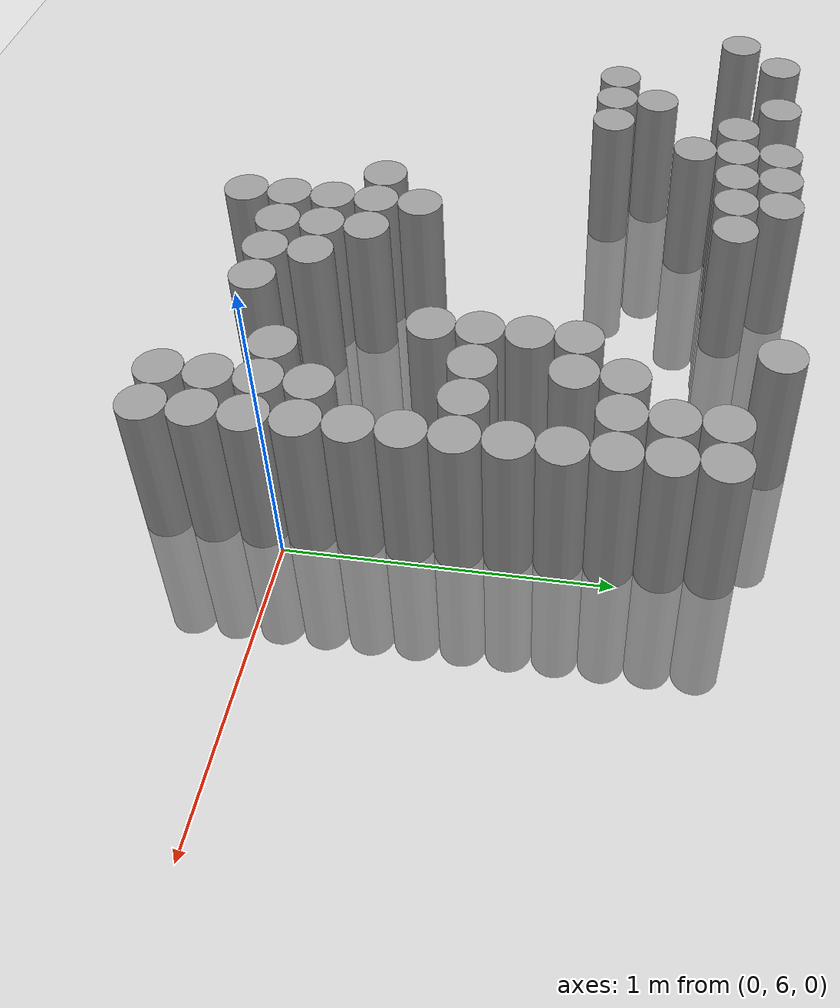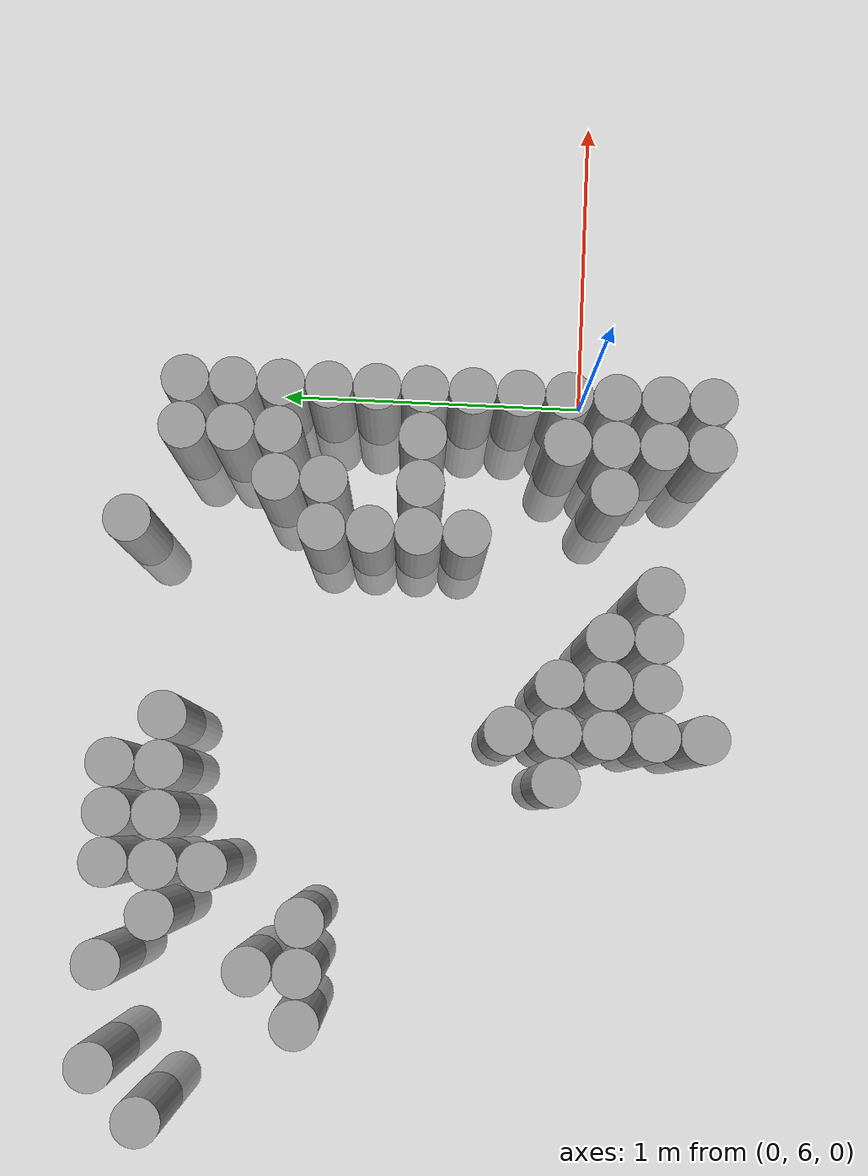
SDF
<sdf version="1.6">
 <world name="default">
  <model name="ground_plane">
   <static>1</static>
   <static>1</static>
   <link name="link">
    <collision name="collision">
     <geometry><plane><normal>0 0 1</normal><size>100 100</size></plane></geometry>
     <surface><friction><ode><mu>100</mu><mu2>50</mu2></ode></friction></surface>
    </collision>
    <visual name="visual">
     <cast_shadows>0</cast_shadows>
     <geometry><plane><normal>0 0 1</normal><size>100 100</size></plane></geometry>
     <material>
      <script><uri>file://media/materials/scripts/gazebo.material</uri><name>Gazebo/Grey</name></script>
     </material>
    </visual>
   </link>
  </model>
  <model name="unit_cylinder_163">
   <static>1</static>
   <pose>-2.325000 7.275000 0.000000 0.000000 0.000000 0.000000</pose>
   <link name="link">
    <inertial>
     <mass>1</mass>
     <inertia><ixx>0.145833</ixx><ixy>0</ixy><ixz>0</ixz><iyy>0.145833</iyy><iyz>0</iyz><izz>0.125</izz></inertia>
    </inertial>
    <collision name="collision">
     <geometry><cylinder><radius>0.075000</radius><length>1</length></cylinder></geometry>
    </collision>
    <visual name="visual">
     <geometry><cylinder><radius>0.075000</radius><length>1</length></cylinder></geometry>
     <material>
      <script><name>Gazebo/Grey</name><uri>file://media/materials/scripts/gazebo.material</uri></script>
     </material>
    </visual>
   </link>
  </model>
  <model name="unit_cylinder_169">
   <static>1</static>
   <pose>-2.175000 7.425000 0.000000 0.000000 0.000000 0.000000</pose>
   <link name="link">
    <inertial>
     <mass>1</mass>
     <inertia><ixx>0.145833</ixx><ixy>0</ixy><ixz>0</ixz><iyy>0.145833</iyy><iyz>0</iyz><izz>0.125</izz></inertia>
    </inertial>
    <collision name="collision">
     <geometry><cylinder><radius>0.075000</radius><length>1</length></cylinder></geometry>
    </collision>
    <visual name="visual">
     <geometry><cylinder><radius>0.075000</radius><length>1</length></cylinder></geometry>
     <material>
      <script><name>Gazebo/Grey</name><uri>file://media/materials/scripts/gazebo.material</uri></script>
     </material>
    </visual>
   </link>
  </model>
  <model name="unit_cylinder_174">
   <static>1</static>
   <pose>-2.025000 6.825000 0.000000 0.000000 0.000000 0.000000</pose>
   <link name="link">
    <inertial>
     <mass>1</mass>
     <inertia><ixx>0.145833</ixx><ixy>0</ixy><ixz>0</ixz><iyy>0.145833</iyy><iyz>0</iyz><izz>0.125</izz></inertia>
    </inertial>
    <collision name="collision">
     <geometry><cylinder><radius>0.075000</radius><length>1</length></cylinder></geometry>
    </collision>
    <visual name="visual">
     <geometry><cylinder><radius>0.075000</radius><length>1</length></cylinder></geometry>
     <material>
      <script><name>Gazebo/Grey</name><uri>file://media/materials/scripts/gazebo.material</uri></script>
     </material>
    </visual>
   </link>
  </model>
  <model name="unit_cylinder_179">
   <static>1</static>
   <pose>-1.875000 6.825000 0.000000 0.000000 0.000000 0.000000</pose>
   <link name="link">
    <inertial>
     <mass>1</mass>
     <inertia><ixx>0.145833</ixx><ixy>0</ixy><ixz>0</ixz><iyy>0.145833</iyy><iyz>0</iyz><izz>0.125</izz></inertia>
    </inertial>
    <collision name="collision">
     <geometry><cylinder><radius>0.075000</radius><length>1</length></cylinder></geometry>
    </collision>
    <visual name="visual">
     <geometry><cylinder><radius>0.075000</radius><length>1</length></cylinder></geometry>
     <material>
      <script><name>Gazebo/Grey</name><uri>file://media/materials/scripts/gazebo.material</uri></script>
     </material>
    </visual>
   </link>
  </model>
  <model name="unit_cylinder_180">
   <static>1</static>
   <pose>-1.875000 6.975000 0.000000 0.000000 0.000000 0.000000</pose>
   <link name="link">
    <inertial>
     <mass>1</mass>
     <inertia><ixx>0.145833</ixx><ixy>0</ixy><ixz>0</ixz><iyy>0.145833</iyy><iyz>0</iyz><izz>0.125</izz></inertia>
    </inertial>
    <collision name="collision">
     <geometry><cylinder><radius>0.075000</radius><length>1</length></cylinder></geometry>
    </collision>
    <visual name="visual">
     <geometry><cylinder><radius>0.075000</radius><length>1</length></cylinder></geometry>
     <material>
      <script><name>Gazebo/Grey</name><uri>file://media/materials/scripts/gazebo.material</uri></script>
     </material>
    </visual>
   </link>
  </model>
  <model name="unit_cylinder_181">
   <static>1</static>
   <pose>-1.875000 7.425000 0.000000 0.000000 0.000000 0.000000</pose>
   <link name="link">
    <inertial>
     <mass>1</mass>
     <inertia><ixx>0.145833</ixx><ixy>0</ixy><ixz>0</ixz><iyy>0.145833</iyy><iyz>0</iyz><izz>0.125</izz></inertia>
    </inertial>
    <collision name="collision">
     <geometry><cylinder><radius>0.075000</radius><length>1</length></cylinder></geometry>
    </collision>
    <visual name="visual">
     <geometry><cylinder><radius>0.075000</radius><length>1</length></cylinder></geometry>
     <material>
      <script><name>Gazebo/Grey</name><uri>file://media/materials/scripts/gazebo.material</uri></script>
     </material>
    </visual>
   </link>
  </model>
  <model name="unit_cylinder_184">
   <static>1</static>
   <pose>-1.725000 6.825000 0.000000 0.000000 0.000000 0.000000</pose>
   <link name="link">
    <inertial>
     <mass>1</mass>
     <inertia><ixx>0.145833</ixx><ixy>0</ixy><ixz>0</ixz><iyy>0.145833</iyy><iyz>0</iyz><izz>0.125</izz></inertia>
    </inertial>
    <collision name="collision">
     <geometry><cylinder><radius>0.075000</radius><length>1</length></cylinder></geometry>
    </collision>
    <visual name="visual">
     <geometry><cylinder><radius>0.075000</radius><length>1</length></cylinder></geometry>
     <material>
      <script><name>Gazebo/Grey</name><uri>file://media/materials/scripts/gazebo.material</uri></script>
     </material>
    </visual>
   </link>
  </model>
  <model name="unit_cylinder_185">
   <static>1</static>
   <pose>-1.725000 7.275000 0.000000 0.000000 0.000000 0.000000</pose>
   <link name="link">
    <inertial>
     <mass>1</mass>
     <inertia><ixx>0.145833</ixx><ixy>0</ixy><ixz>0</ixz><iyy>0.145833</iyy><iyz>0</iyz><izz>0.125</izz></inertia>
    </inertial>
    <collision name="collision">
     <geometry><cylinder><radius>0.075000</radius><length>1</length></cylinder></geometry>
    </collision>
    <visual name="visual">
     <geometry><cylinder><radius>0.075000</radius><length>1</length></cylinder></geometry>
     <material>
      <script><name>Gazebo/Grey</name><uri>file://media/materials/scripts/gazebo.material</uri></script>
     </material>
    </visual>
   </link>
  </model>
  <model name="unit_cylinder_189">
   <static>1</static>
   <pose>-1.575000 7.125000 0.000000 0.000000 0.000000 0.000000</pose>
   <link name="link">
    <inertial>
     <mass>1</mass>
     <inertia><ixx>0.145833</ixx><ixy>0</ixy><ixz>0</ixz><iyy>0.145833</iyy><iyz>0</iyz><izz>0.125</izz></inertia>
    </inertial>
    <collision name="collision">
     <geometry><cylinder><radius>0.075000</radius><length>1</length></cylinder></geometry>
    </collision>
    <visual name="visual">
     <geometry><cylinder><radius>0.075000</radius><length>1</length></cylinder></geometry>
     <material>
      <script><name>Gazebo/Grey</name><uri>file://media/materials/scripts/gazebo.material</uri></script>
     </material>
    </visual>
   </link>
  </model>
  <model name="unit_cylinder_190">
   <static>1</static>
   <pose>-1.575000 7.275000 0.000000 0.000000 0.000000 0.000000</pose>
   <link name="link">
    <inertial>
     <mass>1</mass>
     <inertia><ixx>0.145833</ixx><ixy>0</ixy><ixz>0</ixz><iyy>0.145833</iyy><iyz>0</iyz><izz>0.125</izz></inertia>
    </inertial>
    <collision name="collision">
     <geometry><cylinder><radius>0.075000</radius><length>1</length></cylinder></geometry>
    </collision>
    <visual name="visual">
     <geometry><cylinder><radius>0.075000</radius><length>1</length></cylinder></geometry>
     <material>
      <script><name>Gazebo/Grey</name><uri>file://media/materials/scripts/gazebo.material</uri></script>
     </material>
    </visual>
   </link>
  </model>
  <model name="unit_cylinder_191">
   <static>1</static>
   <pose>-1.575000 7.425000 0.000000 0.000000 0.000000 0.000000</pose>
   <link name="link">
    <inertial>
     <mass>1</mass>
     <inertia><ixx>0.145833</ixx><ixy>0</ixy><ixz>0</ixz><iyy>0.145833</iyy><iyz>0</iyz><izz>0.125</izz></inertia>
    </inertial>
    <collision name="collision">
     <geometry><cylinder><radius>0.075000</radius><length>1</length></cylinder></geometry>
    </collision>
    <visual name="visual">
     <geometry><cylinder><radius>0.075000</radius><length>1</length></cylinder></geometry>
     <material>
      <script><name>Gazebo/Grey</name><uri>file://media/materials/scripts/gazebo.material</uri></script>
     </material>
    </visual>
   </link>
  </model>
  <model name="unit_cylinder_198">
   <static>1</static>
   <pose>-1.425000 7.275000 0.000000 0.000000 0.000000 0.000000</pose>
   <link name="link">
    <inertial>
     <mass>1</mass>
     <inertia><ixx>0.145833</ixx><ixy>0</ixy><ixz>0</ixz><iyy>0.145833</iyy><iyz>0</iyz><izz>0.125</izz></inertia>
    </inertial>
    <collision name="collision">
     <geometry><cylinder><radius>0.075000</radius><length>1</length></cylinder></geometry>
    </collision>
    <visual name="visual">
     <geometry><cylinder><radius>0.075000</radius><length>1</length></cylinder></geometry>
     <material>
      <script><name>Gazebo/Grey</name><uri>file://media/materials/scripts/gazebo.material</uri></script>
     </material>
    </visual>
   </link>
  </model>
  <model name="unit_cylinder_199">
   <static>1</static>
   <pose>-1.425000 7.425000 0.000000 0.000000 0.000000 0.000000</pose>
   <link name="link">
    <inertial>
     <mass>1</mass>
     <inertia><ixx>0.145833</ixx><ixy>0</ixy><ixz>0</ixz><iyy>0.145833</iyy><iyz>0</iyz><izz>0.125</izz></inertia>
    </inertial>
    <collision name="collision">
     <geometry><cylinder><radius>0.075000</radius><length>1</length></cylinder></geometry>
    </collision>
    <visual name="visual">
     <geometry><cylinder><radius>0.075000</radius><length>1</length></cylinder></geometry>
     <material>
      <script><name>Gazebo/Grey</name><uri>file://media/materials/scripts/gazebo.material</uri></script>
     </material>
    </visual>
   </link>
  </model>
  <model name="unit_cylinder_204">
   <static>1</static>
   <pose>-1.275000 6.075000 0.000000 0.000000 0.000000 0.000000</pose>
   <link name="link">
    <inertial>
     <mass>1</mass>
     <inertia><ixx>0.145833</ixx><ixy>0</ixy><ixz>0</ixz><iyy>0.145833</iyy><iyz>0</iyz><izz>0.125</izz></inertia>
    </inertial>
    <collision name="collision">
     <geometry><cylinder><radius>0.075000</radius><length>1</length></cylinder></geometry>
    </collision>
    <visual name="visual">
     <geometry><cylinder><radius>0.075000</radius><length>1</length></cylinder></geometry>
     <material>
      <script><name>Gazebo/Grey</name><uri>file://media/materials/scripts/gazebo.material</uri></script>
     </material>
    </visual>
   </link>
  </model>
  <model name="unit_cylinder_205">
   <static>1</static>
   <pose>-1.275000 7.275000 0.000000 0.000000 0.000000 0.000000</pose>
   <link name="link">
    <inertial>
     <mass>1</mass>
     <inertia><ixx>0.145833</ixx><ixy>0</ixy><ixz>0</ixz><iyy>0.145833</iyy><iyz>0</iyz><izz>0.125</izz></inertia>
    </inertial>
    <collision name="collision">
     <geometry><cylinder><radius>0.075000</radius><length>1</length></cylinder></geometry>
    </collision>
    <visual name="visual">
     <geometry><cylinder><radius>0.075000</radius><length>1</length></cylinder></geometry>
     <material>
      <script><name>Gazebo/Grey</name><uri>file://media/materials/scripts/gazebo.material</uri></script>
     </material>
    </visual>
   </link>
  </model>
  <model name="unit_cylinder_206">
   <static>1</static>
   <pose>-1.275000 7.425000 0.000000 0.000000 0.000000 0.000000</pose>
   <link name="link">
    <inertial>
     <mass>1</mass>
     <inertia><ixx>0.145833</ixx><ixy>0</ixy><ixz>0</ixz><iyy>0.145833</iyy><iyz>0</iyz><izz>0.125</izz></inertia>
    </inertial>
    <collision name="collision">
     <geometry><cylinder><radius>0.075000</radius><length>1</length></cylinder></geometry>
    </collision>
    <visual name="visual">
     <geometry><cylinder><radius>0.075000</radius><length>1</length></cylinder></geometry>
     <material>
      <script><name>Gazebo/Grey</name><uri>file://media/materials/scripts/gazebo.material</uri></script>
     </material>
    </visual>
   </link>
  </model>
  <model name="unit_cylinder_208">
   <static>1</static>
   <pose>-1.125000 5.625000 0.000000 0.000000 0.000000 0.000000</pose>
   <link name="link">
    <inertial>
     <mass>1</mass>
     <inertia><ixx>0.145833</ixx><ixy>0</ixy><ixz>0</ixz><iyy>0.145833</iyy><iyz>0</iyz><izz>0.125</izz></inertia>
    </inertial>
    <collision name="collision">
     <geometry><cylinder><radius>0.075000</radius><length>1</length></cylinder></geometry>
    </collision>
    <visual name="visual">
     <geometry><cylinder><radius>0.075000</radius><length>1</length></cylinder></geometry>
     <material>
      <script><name>Gazebo/Grey</name><uri>file://media/materials/scripts/gazebo.material</uri></script>
     </material>
    </visual>
   </link>
  </model>
  <model name="unit_cylinder_209">
   <static>1</static>
   <pose>-1.125000 5.775000 0.000000 0.000000 0.000000 0.000000</pose>
   <link name="link">
    <inertial>
     <mass>1</mass>
     <inertia><ixx>0.145833</ixx><ixy>0</ixy><ixz>0</ixz><iyy>0.145833</iyy><iyz>0</iyz><izz>0.125</izz></inertia>
    </inertial>
    <collision name="collision">
     <geometry><cylinder><radius>0.075000</radius><length>1</length></cylinder></geometry>
    </collision>
    <visual name="visual">
     <geometry><cylinder><radius>0.075000</radius><length>1</length></cylinder></geometry>
     <material>
      <script><name>Gazebo/Grey</name><uri>file://media/materials/scripts/gazebo.material</uri></script>
     </material>
    </visual>
   </link>
  </model>
  <model name="unit_cylinder_210">
   <static>1</static>
   <pose>-1.125000 5.925000 0.000000 0.000000 0.000000 0.000000</pose>
   <link name="link">
    <inertial>
     <mass>1</mass>
     <inertia><ixx>0.145833</ixx><ixy>0</ixy><ixz>0</ixz><iyy>0.145833</iyy><iyz>0</iyz><izz>0.125</izz></inertia>
    </inertial>
    <collision name="collision">
     <geometry><cylinder><radius>0.075000</radius><length>1</length></cylinder></geometry>
    </collision>
    <visual name="visual">
     <geometry><cylinder><radius>0.075000</radius><length>1</length></cylinder></geometry>
     <material>
      <script><name>Gazebo/Grey</name><uri>file://media/materials/scripts/gazebo.material</uri></script>
     </material>
    </visual>
   </link>
  </model>
  <model name="unit_cylinder_211">
   <static>1</static>
   <pose>-1.125000 6.075000 0.000000 0.000000 0.000000 0.000000</pose>
   <link name="link">
    <inertial>
     <mass>1</mass>
     <inertia><ixx>0.145833</ixx><ixy>0</ixy><ixz>0</ixz><iyy>0.145833</iyy><iyz>0</iyz><izz>0.125</izz></inertia>
    </inertial>
    <collision name="collision">
     <geometry><cylinder><radius>0.075000</radius><length>1</length></cylinder></geometry>
    </collision>
    <visual name="visual">
     <geometry><cylinder><radius>0.075000</radius><length>1</length></cylinder></geometry>
     <material>
      <script><name>Gazebo/Grey</name><uri>file://media/materials/scripts/gazebo.material</uri></script>
     </material>
    </visual>
   </link>
  </model>
  <model name="unit_cylinder_212">
   <static>1</static>
   <pose>-1.125000 6.225000 0.000000 0.000000 0.000000 0.000000</pose>
   <link name="link">
    <inertial>
     <mass>1</mass>
     <inertia><ixx>0.145833</ixx><ixy>0</ixy><ixz>0</ixz><iyy>0.145833</iyy><iyz>0</iyz><izz>0.125</izz></inertia>
    </inertial>
    <collision name="collision">
     <geometry><cylinder><radius>0.075000</radius><length>1</length></cylinder></geometry>
    </collision>
    <visual name="visual">
     <geometry><cylinder><radius>0.075000</radius><length>1</length></cylinder></geometry>
     <material>
      <script><name>Gazebo/Grey</name><uri>file://media/materials/scripts/gazebo.material</uri></script>
     </material>
    </visual>
   </link>
  </model>
  <model name="unit_cylinder_213">
   <static>1</static>
   <pose>-1.125000 7.275000 0.000000 0.000000 0.000000 0.000000</pose>
   <link name="link">
    <inertial>
     <mass>1</mass>
     <inertia><ixx>0.145833</ixx><ixy>0</ixy><ixz>0</ixz><iyy>0.145833</iyy><iyz>0</iyz><izz>0.125</izz></inertia>
    </inertial>
    <collision name="collision">
     <geometry><cylinder><radius>0.075000</radius><length>1</length></cylinder></geometry>
    </collision>
    <visual name="visual">
     <geometry><cylinder><radius>0.075000</radius><length>1</length></cylinder></geometry>
     <material>
      <script><name>Gazebo/Grey</name><uri>file://media/materials/scripts/gazebo.material</uri></script>
     </material>
    </visual>
   </link>
  </model>
  <model name="unit_cylinder_215">
   <static>1</static>
   <pose>-0.975000 5.775000 0.000000 0.000000 0.000000 0.000000</pose>
   <link name="link">
    <inertial>
     <mass>1</mass>
     <inertia><ixx>0.145833</ixx><ixy>0</ixy><ixz>0</ixz><iyy>0.145833</iyy><iyz>0</iyz><izz>0.125</izz></inertia>
    </inertial>
    <collision name="collision">
     <geometry><cylinder><radius>0.075000</radius><length>1</length></cylinder></geometry>
    </collision>
    <visual name="visual">
     <geometry><cylinder><radius>0.075000</radius><length>1</length></cylinder></geometry>
     <material>
      <script><name>Gazebo/Grey</name><uri>file://media/materials/scripts/gazebo.material</uri></script>
     </material>
    </visual>
   </link>
  </model>
  <model name="unit_cylinder_216">
   <static>1</static>
   <pose>-0.975000 5.925000 0.000000 0.000000 0.000000 0.000000</pose>
   <link name="link">
    <inertial>
     <mass>1</mass>
     <inertia><ixx>0.145833</ixx><ixy>0</ixy><ixz>0</ixz><iyy>0.145833</iyy><iyz>0</iyz><izz>0.125</izz></inertia>
    </inertial>
    <collision name="collision">
     <geometry><cylinder><radius>0.075000</radius><length>1</length></cylinder></geometry>
    </collision>
    <visual name="visual">
     <geometry><cylinder><radius>0.075000</radius><length>1</length></cylinder></geometry>
     <material>
      <script><name>Gazebo/Grey</name><uri>file://media/materials/scripts/gazebo.material</uri></script>
     </material>
    </visual>
   </link>
  </model>
  <model name="unit_cylinder_217">
   <static>1</static>
   <pose>-0.975000 6.075000 0.000000 0.000000 0.000000 0.000000</pose>
   <link name="link">
    <inertial>
     <mass>1</mass>
     <inertia><ixx>0.145833</ixx><ixy>0</ixy><ixz>0</ixz><iyy>0.145833</iyy><iyz>0</iyz><izz>0.125</izz></inertia>
    </inertial>
    <collision name="collision">
     <geometry><cylinder><radius>0.075000</radius><length>1</length></cylinder></geometry>
    </collision>
    <visual name="visual">
     <geometry><cylinder><radius>0.075000</radius><length>1</length></cylinder></geometry>
     <material>
      <script><name>Gazebo/Grey</name><uri>file://media/materials/scripts/gazebo.material</uri></script>
     </material>
    </visual>
   </link>
  </model>
  <model name="unit_cylinder_219">
   <static>1</static>
   <pose>-0.825000 5.775000 0.000000 0.000000 0.000000 0.000000</pose>
   <link name="link">
    <inertial>
     <mass>1</mass>
     <inertia><ixx>0.145833</ixx><ixy>0</ixy><ixz>0</ixz><iyy>0.145833</iyy><iyz>0</iyz><izz>0.125</izz></inertia>
    </inertial>
    <collision name="collision">
     <geometry><cylinder><radius>0.075000</radius><length>1</length></cylinder></geometry>
    </collision>
    <visual name="visual">
     <geometry><cylinder><radius>0.075000</radius><length>1</length></cylinder></geometry>
     <material>
      <script><name>Gazebo/Grey</name><uri>file://media/materials/scripts/gazebo.material</uri></script>
     </material>
    </visual>
   </link>
  </model>
  <model name="unit_cylinder_220">
   <static>1</static>
   <pose>-0.825000 5.925000 0.000000 0.000000 0.000000 0.000000</pose>
   <link name="link">
    <inertial>
     <mass>1</mass>
     <inertia><ixx>0.145833</ixx><ixy>0</ixy><ixz>0</ixz><iyy>0.145833</iyy><iyz>0</iyz><izz>0.125</izz></inertia>
    </inertial>
    <collision name="collision">
     <geometry><cylinder><radius>0.075000</radius><length>1</length></cylinder></geometry>
    </collision>
    <visual name="visual">
     <geometry><cylinder><radius>0.075000</radius><length>1</length></cylinder></geometry>
     <material>
      <script><name>Gazebo/Grey</name><uri>file://media/materials/scripts/gazebo.material</uri></script>
     </material>
    </visual>
   </link>
  </model>
  <model name="unit_cylinder_221">
   <static>1</static>
   <pose>-0.675000 5.775000 0.000000 0.000000 0.000000 0.000000</pose>
   <link name="link">
    <inertial>
     <mass>1</mass>
     <inertia><ixx>0.145833</ixx><ixy>0</ixy><ixz>0</ixz><iyy>0.145833</iyy><iyz>0</iyz><izz>0.125</izz></inertia>
    </inertial>
    <collision name="collision">
     <geometry><cylinder><radius>0.075000</radius><length>1</length></cylinder></geometry>
    </collision>
    <visual name="visual">
     <geometry><cylinder><radius>0.075000</radius><length>1</length></cylinder></geometry>
     <material>
      <script><name>Gazebo/Grey</name><uri>file://media/materials/scripts/gazebo.material</uri></script>
     </material>
    </visual>
   </link>
  </model>
  <model name="unit_cylinder_222">
   <static>1</static>
   <pose>-0.525000 6.375000 0.000000 0.000000 0.000000 0.000000</pose>
   <link name="link">
    <inertial>
     <mass>1</mass>
     <inertia><ixx>0.145833</ixx><ixy>0</ixy><ixz>0</ixz><iyy>0.145833</iyy><iyz>0</iyz><izz>0.125</izz></inertia>
    </inertial>
    <collision name="collision">
     <geometry><cylinder><radius>0.075000</radius><length>1</length></cylinder></geometry>
    </collision>
    <visual name="visual">
     <geometry><cylinder><radius>0.075000</radius><length>1</length></cylinder></geometry>
     <material>
      <script><name>Gazebo/Grey</name><uri>file://media/materials/scripts/gazebo.material</uri></script>
     </material>
    </visual>
   </link>
  </model>
  <model name="unit_cylinder_223">
   <static>1</static>
   <pose>-0.525000 6.525000 0.000000 0.000000 0.000000 0.000000</pose>
   <link name="link">
    <inertial>
     <mass>1</mass>
     <inertia><ixx>0.145833</ixx><ixy>0</ixy><ixz>0</ixz><iyy>0.145833</iyy><iyz>0</iyz><izz>0.125</izz></inertia>
    </inertial>
    <collision name="collision">
     <geometry><cylinder><radius>0.075000</radius><length>1</length></cylinder></geometry>
    </collision>
    <visual name="visual">
     <geometry><cylinder><radius>0.075000</radius><length>1</length></cylinder></geometry>
     <material>
      <script><name>Gazebo/Grey</name><uri>file://media/materials/scripts/gazebo.material</uri></script>
     </material>
    </visual>
   </link>
  </model>
  <model name="unit_cylinder_224">
   <static>1</static>
   <pose>-0.525000 6.675000 0.000000 0.000000 0.000000 0.000000</pose>
   <link name="link">
    <inertial>
     <mass>1</mass>
     <inertia><ixx>0.145833</ixx><ixy>0</ixy><ixz>0</ixz><iyy>0.145833</iyy><iyz>0</iyz><izz>0.125</izz></inertia>
    </inertial>
    <collision name="collision">
     <geometry><cylinder><radius>0.075000</radius><length>1</length></cylinder></geometry>
    </collision>
    <visual name="visual">
     <geometry><cylinder><radius>0.075000</radius><length>1</length></cylinder></geometry>
     <material>
      <script><name>Gazebo/Grey</name><uri>file://media/materials/scripts/gazebo.material</uri></script>
     </material>
    </visual>
   </link>
  </model>
  <model name="unit_cylinder_225">
   <static>1</static>
   <pose>-0.525000 6.825000 0.000000 0.000000 0.000000 0.000000</pose>
   <link name="link">
    <inertial>
     <mass>1</mass>
     <inertia><ixx>0.145833</ixx><ixy>0</ixy><ixz>0</ixz><iyy>0.145833</iyy><iyz>0</iyz><izz>0.125</izz></inertia>
    </inertial>
    <collision name="collision">
     <geometry><cylinder><radius>0.075000</radius><length>1</length></cylinder></geometry>
    </collision>
    <visual name="visual">
     <geometry><cylinder><radius>0.075000</radius><length>1</length></cylinder></geometry>
     <material>
      <script><name>Gazebo/Grey</name><uri>file://media/materials/scripts/gazebo.material</uri></script>
     </material>
    </visual>
   </link>
  </model>
  <model name="unit_cylinder_226">
   <static>1</static>
   <pose>-0.525000 7.425000 0.000000 0.000000 0.000000 0.000000</pose>
   <link name="link">
    <inertial>
     <mass>1</mass>
     <inertia><ixx>0.145833</ixx><ixy>0</ixy><ixz>0</ixz><iyy>0.145833</iyy><iyz>0</iyz><izz>0.125</izz></inertia>
    </inertial>
    <collision name="collision">
     <geometry><cylinder><radius>0.075000</radius><length>1</length></cylinder></geometry>
    </collision>
    <visual name="visual">
     <geometry><cylinder><radius>0.075000</radius><length>1</length></cylinder></geometry>
     <material>
      <script><name>Gazebo/Grey</name><uri>file://media/materials/scripts/gazebo.material</uri></script>
     </material>
    </visual>
   </link>
  </model>
  <model name="unit_cylinder_228">
   <static>1</static>
   <pose>-0.375000 5.925000 0.000000 0.000000 0.000000 0.000000</pose>
   <link name="link">
    <inertial>
     <mass>1</mass>
     <inertia><ixx>0.145833</ixx><ixy>0</ixy><ixz>0</ixz><iyy>0.145833</iyy><iyz>0</iyz><izz>0.125</izz></inertia>
    </inertial>
    <collision name="collision">
     <geometry><cylinder><radius>0.075000</radius><length>1</length></cylinder></geometry>
    </collision>
    <visual name="visual">
     <geometry><cylinder><radius>0.075000</radius><length>1</length></cylinder></geometry>
     <material>
      <script><name>Gazebo/Grey</name><uri>file://media/materials/scripts/gazebo.material</uri></script>
     </material>
    </visual>
   </link>
  </model>
  <model name="unit_cylinder_229">
   <static>1</static>
   <pose>-0.375000 6.525000 0.000000 0.000000 0.000000 0.000000</pose>
   <link name="link">
    <inertial>
     <mass>1</mass>
     <inertia><ixx>0.145833</ixx><ixy>0</ixy><ixz>0</ixz><iyy>0.145833</iyy><iyz>0</iyz><izz>0.125</izz></inertia>
    </inertial>
    <collision name="collision">
     <geometry><cylinder><radius>0.075000</radius><length>1</length></cylinder></geometry>
    </collision>
    <visual name="visual">
     <geometry><cylinder><radius>0.075000</radius><length>1</length></cylinder></geometry>
     <material>
      <script><name>Gazebo/Grey</name><uri>file://media/materials/scripts/gazebo.material</uri></script>
     </material>
    </visual>
   </link>
  </model>
  <model name="unit_cylinder_230">
   <static>1</static>
   <pose>-0.375000 6.825000 0.000000 0.000000 0.000000 0.000000</pose>
   <link name="link">
    <inertial>
     <mass>1</mass>
     <inertia><ixx>0.145833</ixx><ixy>0</ixy><ixz>0</ixz><iyy>0.145833</iyy><iyz>0</iyz><izz>0.125</izz></inertia>
    </inertial>
    <collision name="collision">
     <geometry><cylinder><radius>0.075000</radius><length>1</length></cylinder></geometry>
    </collision>
    <visual name="visual">
     <geometry><cylinder><radius>0.075000</radius><length>1</length></cylinder></geometry>
     <material>
      <script><name>Gazebo/Grey</name><uri>file://media/materials/scripts/gazebo.material</uri></script>
     </material>
    </visual>
   </link>
  </model>
  <model name="unit_cylinder_231">
   <static>1</static>
   <pose>-0.375000 6.975000 0.000000 0.000000 0.000000 0.000000</pose>
   <link name="link">
    <inertial>
     <mass>1</mass>
     <inertia><ixx>0.145833</ixx><ixy>0</ixy><ixz>0</ixz><iyy>0.145833</iyy><iyz>0</iyz><izz>0.125</izz></inertia>
    </inertial>
    <collision name="collision">
     <geometry><cylinder><radius>0.075000</radius><length>1</length></cylinder></geometry>
    </collision>
    <visual name="visual">
     <geometry><cylinder><radius>0.075000</radius><length>1</length></cylinder></geometry>
     <material>
      <script><name>Gazebo/Grey</name><uri>file://media/materials/scripts/gazebo.material</uri></script>
     </material>
    </visual>
   </link>
  </model>
  <model name="unit_cylinder_238">
   <static>1</static>
   <pose>-0.225000 5.625000 0.000000 0.000000 0.000000 0.000000</pose>
   <link name="link">
    <inertial>
     <mass>1</mass>
     <inertia><ixx>0.145833</ixx><ixy>0</ixy><ixz>0</ixz><iyy>0.145833</iyy><iyz>0</iyz><izz>0.125</izz></inertia>
    </inertial>
    <collision name="collision">
     <geometry><cylinder><radius>0.075000</radius><length>1</length></cylinder></geometry>
    </collision>
    <visual name="visual">
     <geometry><cylinder><radius>0.075000</radius><length>1</length></cylinder></geometry>
     <material>
      <script><name>Gazebo/Grey</name><uri>file://media/materials/scripts/gazebo.material</uri></script>
     </material>
    </visual>
   </link>
  </model>
  <model name="unit_cylinder_239">
   <static>1</static>
   <pose>-0.225000 5.775000 0.000000 0.000000 0.000000 0.000000</pose>
   <link name="link">
    <inertial>
     <mass>1</mass>
     <inertia><ixx>0.145833</ixx><ixy>0</ixy><ixz>0</ixz><iyy>0.145833</iyy><iyz>0</iyz><izz>0.125</izz></inertia>
    </inertial>
    <collision name="collision">
     <geometry><cylinder><radius>0.075000</radius><length>1</length></cylinder></geometry>
    </collision>
    <visual name="visual">
     <geometry><cylinder><radius>0.075000</radius><length>1</length></cylinder></geometry>
     <material>
      <script><name>Gazebo/Grey</name><uri>file://media/materials/scripts/gazebo.material</uri></script>
     </material>
    </visual>
   </link>
  </model>
  <model name="unit_cylinder_240">
   <static>1</static>
   <pose>-0.225000 5.925000 0.000000 0.000000 0.000000 0.000000</pose>
   <link name="link">
    <inertial>
     <mass>1</mass>
     <inertia><ixx>0.145833</ixx><ixy>0</ixy><ixz>0</ixz><iyy>0.145833</iyy><iyz>0</iyz><izz>0.125</izz></inertia>
    </inertial>
    <collision name="collision">
     <geometry><cylinder><radius>0.075000</radius><length>1</length></cylinder></geometry>
    </collision>
    <visual name="visual">
     <geometry><cylinder><radius>0.075000</radius><length>1</length></cylinder></geometry>
     <material>
      <script><name>Gazebo/Grey</name><uri>file://media/materials/scripts/gazebo.material</uri></script>
     </material>
    </visual>
   </link>
  </model>
  <model name="unit_cylinder_241">
   <static>1</static>
   <pose>-0.225000 6.075000 0.000000 0.000000 0.000000 0.000000</pose>
   <link name="link">
    <inertial>
     <mass>1</mass>
     <inertia><ixx>0.145833</ixx><ixy>0</ixy><ixz>0</ixz><iyy>0.145833</iyy><iyz>0</iyz><izz>0.125</izz></inertia>
    </inertial>
    <collision name="collision">
     <geometry><cylinder><radius>0.075000</radius><length>1</length></cylinder></geometry>
    </collision>
    <visual name="visual">
     <geometry><cylinder><radius>0.075000</radius><length>1</length></cylinder></geometry>
     <material>
      <script><name>Gazebo/Grey</name><uri>file://media/materials/scripts/gazebo.material</uri></script>
     </material>
    </visual>
   </link>
  </model>
  <model name="unit_cylinder_242">
   <static>1</static>
   <pose>-0.225000 6.525000 0.000000 0.000000 0.000000 0.000000</pose>
   <link name="link">
    <inertial>
     <mass>1</mass>
     <inertia><ixx>0.145833</ixx><ixy>0</ixy><ixz>0</ixz><iyy>0.145833</iyy><iyz>0</iyz><izz>0.125</izz></inertia>
    </inertial>
    <collision name="collision">
     <geometry><cylinder><radius>0.075000</radius><length>1</length></cylinder></geometry>
    </collision>
    <visual name="visual">
     <geometry><cylinder><radius>0.075000</radius><length>1</length></cylinder></geometry>
     <material>
      <script><name>Gazebo/Grey</name><uri>file://media/materials/scripts/gazebo.material</uri></script>
     </material>
    </visual>
   </link>
  </model>
  <model name="unit_cylinder_243">
   <static>1</static>
   <pose>-0.225000 6.975000 0.000000 0.000000 0.000000 0.000000</pose>
   <link name="link">
    <inertial>
     <mass>1</mass>
     <inertia><ixx>0.145833</ixx><ixy>0</ixy><ixz>0</ixz><iyy>0.145833</iyy><iyz>0</iyz><izz>0.125</izz></inertia>
    </inertial>
    <collision name="collision">
     <geometry><cylinder><radius>0.075000</radius><length>1</length></cylinder></geometry>
    </collision>
    <visual name="visual">
     <geometry><cylinder><radius>0.075000</radius><length>1</length></cylinder></geometry>
     <material>
      <script><name>Gazebo/Grey</name><uri>file://media/materials/scripts/gazebo.material</uri></script>
     </material>
    </visual>
   </link>
  </model>
  <model name="unit_cylinder_244">
   <static>1</static>
   <pose>-0.225000 7.125000 0.000000 0.000000 0.000000 0.000000</pose>
   <link name="link">
    <inertial>
     <mass>1</mass>
     <inertia><ixx>0.145833</ixx><ixy>0</ixy><ixz>0</ixz><iyy>0.145833</iyy><iyz>0</iyz><izz>0.125</izz></inertia>
    </inertial>
    <collision name="collision">
     <geometry><cylinder><radius>0.075000</radius><length>1</length></cylinder></geometry>
    </collision>
    <visual name="visual">
     <geometry><cylinder><radius>0.075000</radius><length>1</length></cylinder></geometry>
     <material>
      <script><name>Gazebo/Grey</name><uri>file://media/materials/scripts/gazebo.material</uri></script>
     </material>
    </visual>
   </link>
  </model>
  <model name="unit_cylinder_245">
   <static>1</static>
   <pose>-0.225000 7.275000 0.000000 0.000000 0.000000 0.000000</pose>
   <link name="link">
    <inertial>
     <mass>1</mass>
     <inertia><ixx>0.145833</ixx><ixy>0</ixy><ixz>0</ixz><iyy>0.145833</iyy><iyz>0</iyz><izz>0.125</izz></inertia>
    </inertial>
    <collision name="collision">
     <geometry><cylinder><radius>0.075000</radius><length>1</length></cylinder></geometry>
    </collision>
    <visual name="visual">
     <geometry><cylinder><radius>0.075000</radius><length>1</length></cylinder></geometry>
     <material>
      <script><name>Gazebo/Grey</name><uri>file://media/materials/scripts/gazebo.material</uri></script>
     </material>
    </visual>
   </link>
  </model>
  <model name="unit_cylinder_259">
   <static>1</static>
   <pose>-0.075000 5.625000 0.000000 0.000000 0.000000 0.000000</pose>
   <link name="link">
    <inertial>
     <mass>1</mass>
     <inertia><ixx>0.145833</ixx><ixy>0</ixy><ixz>0</ixz><iyy>0.145833</iyy><iyz>0</iyz><izz>0.125</izz></inertia>
    </inertial>
    <collision name="collision">
     <geometry><cylinder><radius>0.075000</radius><length>1</length></cylinder></geometry>
    </collision>
    <visual name="visual">
     <geometry><cylinder><radius>0.075000</radius><length>1</length></cylinder></geometry>
     <material>
      <script><name>Gazebo/Grey</name><uri>file://media/materials/scripts/gazebo.material</uri></script>
     </material>
    </visual>
   </link>
  </model>
  <model name="unit_cylinder_260">
   <static>1</static>
   <pose>-0.075000 5.775000 0.000000 0.000000 0.000000 0.000000</pose>
   <link name="link">
    <inertial>
     <mass>1</mass>
     <inertia><ixx>0.145833</ixx><ixy>0</ixy><ixz>0</ixz><iyy>0.145833</iyy><iyz>0</iyz><izz>0.125</izz></inertia>
    </inertial>
    <collision name="collision">
     <geometry><cylinder><radius>0.075000</radius><length>1</length></cylinder></geometry>
    </collision>
    <visual name="visual">
     <geometry><cylinder><radius>0.075000</radius><length>1</length></cylinder></geometry>
     <material>
      <script><name>Gazebo/Grey</name><uri>file://media/materials/scripts/gazebo.material</uri></script>
     </material>
    </visual>
   </link>
  </model>
  <model name="unit_cylinder_261">
   <static>1</static>
   <pose>-0.075000 5.925000 0.000000 0.000000 0.000000 0.000000</pose>
   <link name="link">
    <inertial>
     <mass>1</mass>
     <inertia><ixx>0.145833</ixx><ixy>0</ixy><ixz>0</ixz><iyy>0.145833</iyy><iyz>0</iyz><izz>0.125</izz></inertia>
    </inertial>
    <collision name="collision">
     <geometry><cylinder><radius>0.075000</radius><length>1</length></cylinder></geometry>
    </collision>
    <visual name="visual">
     <geometry><cylinder><radius>0.075000</radius><length>1</length></cylinder></geometry>
     <material>
      <script><name>Gazebo/Grey</name><uri>file://media/materials/scripts/gazebo.material</uri></script>
     </material>
    </visual>
   </link>
  </model>
  <model name="unit_cylinder_262">
   <static>1</static>
   <pose>-0.075000 6.075000 0.000000 0.000000 0.000000 0.000000</pose>
   <link name="link">
    <inertial>
     <mass>1</mass>
     <inertia><ixx>0.145833</ixx><ixy>0</ixy><ixz>0</ixz><iyy>0.145833</iyy><iyz>0</iyz><izz>0.125</izz></inertia>
    </inertial>
    <collision name="collision">
     <geometry><cylinder><radius>0.075000</radius><length>1</length></cylinder></geometry>
    </collision>
    <visual name="visual">
     <geometry><cylinder><radius>0.075000</radius><length>1</length></cylinder></geometry>
     <material>
      <script><name>Gazebo/Grey</name><uri>file://media/materials/scripts/gazebo.material</uri></script>
     </material>
    </visual>
   </link>
  </model>
  <model name="unit_cylinder_263">
   <static>1</static>
   <pose>-0.075000 6.225000 0.000000 0.000000 0.000000 0.000000</pose>
   <link name="link">
    <inertial>
     <mass>1</mass>
     <inertia><ixx>0.145833</ixx><ixy>0</ixy><ixz>0</ixz><iyy>0.145833</iyy><iyz>0</iyz><izz>0.125</izz></inertia>
    </inertial>
    <collision name="collision">
     <geometry><cylinder><radius>0.075000</radius><length>1</length></cylinder></geometry>
    </collision>
    <visual name="visual">
     <geometry><cylinder><radius>0.075000</radius><length>1</length></cylinder></geometry>
     <material>
      <script><name>Gazebo/Grey</name><uri>file://media/materials/scripts/gazebo.material</uri></script>
     </material>
    </visual>
   </link>
  </model>
  <model name="unit_cylinder_264">
   <static>1</static>
   <pose>-0.075000 6.375000 0.000000 0.000000 0.000000 0.000000</pose>
   <link name="link">
    <inertial>
     <mass>1</mass>
     <inertia><ixx>0.145833</ixx><ixy>0</ixy><ixz>0</ixz><iyy>0.145833</iyy><iyz>0</iyz><izz>0.125</izz></inertia>
    </inertial>
    <collision name="collision">
     <geometry><cylinder><radius>0.075000</radius><length>1</length></cylinder></geometry>
    </collision>
    <visual name="visual">
     <geometry><cylinder><radius>0.075000</radius><length>1</length></cylinder></geometry>
     <material>
      <script><name>Gazebo/Grey</name><uri>file://media/materials/scripts/gazebo.material</uri></script>
     </material>
    </visual>
   </link>
  </model>
  <model name="unit_cylinder_265">
   <static>1</static>
   <pose>-0.075000 6.525000 0.000000 0.000000 0.000000 0.000000</pose>
   <link name="link">
    <inertial>
     <mass>1</mass>
     <inertia><ixx>0.145833</ixx><ixy>0</ixy><ixz>0</ixz><iyy>0.145833</iyy><iyz>0</iyz><izz>0.125</izz></inertia>
    </inertial>
    <collision name="collision">
     <geometry><cylinder><radius>0.075000</radius><length>1</length></cylinder></geometry>
    </collision>
    <visual name="visual">
     <geometry><cylinder><radius>0.075000</radius><length>1</length></cylinder></geometry>
     <material>
      <script><name>Gazebo/Grey</name><uri>file://media/materials/scripts/gazebo.material</uri></script>
     </material>
    </visual>
   </link>
  </model>
  <model name="unit_cylinder_266">
   <static>1</static>
   <pose>-0.075000 6.675000 0.000000 0.000000 0.000000 0.000000</pose>
   <link name="link">
    <inertial>
     <mass>1</mass>
     <inertia><ixx>0.145833</ixx><ixy>0</ixy><ixz>0</ixz><iyy>0.145833</iyy><iyz>0</iyz><izz>0.125</izz></inertia>
    </inertial>
    <collision name="collision">
     <geometry><cylinder><radius>0.075000</radius><length>1</length></cylinder></geometry>
    </collision>
    <visual name="visual">
     <geometry><cylinder><radius>0.075000</radius><length>1</length></cylinder></geometry>
     <material>
      <script><name>Gazebo/Grey</name><uri>file://media/materials/scripts/gazebo.material</uri></script>
     </material>
    </visual>
   </link>
  </model>
  <model name="unit_cylinder_267">
   <static>1</static>
   <pose>-0.075000 6.825000 0.000000 0.000000 0.000000 0.000000</pose>
   <link name="link">
    <inertial>
     <mass>1</mass>
     <inertia><ixx>0.145833</ixx><ixy>0</ixy><ixz>0</ixz><iyy>0.145833</iyy><iyz>0</iyz><izz>0.125</izz></inertia>
    </inertial>
    <collision name="collision">
     <geometry><cylinder><radius>0.075000</radius><length>1</length></cylinder></geometry>
    </collision>
    <visual name="visual">
     <geometry><cylinder><radius>0.075000</radius><length>1</length></cylinder></geometry>
     <material>
      <script><name>Gazebo/Grey</name><uri>file://media/materials/scripts/gazebo.material</uri></script>
     </material>
    </visual>
   </link>
  </model>
  <model name="unit_cylinder_268">
   <static>1</static>
   <pose>-0.075000 6.975000 0.000000 0.000000 0.000000 0.000000</pose>
   <link name="link">
    <inertial>
     <mass>1</mass>
     <inertia><ixx>0.145833</ixx><ixy>0</ixy><ixz>0</ixz><iyy>0.145833</iyy><iyz>0</iyz><izz>0.125</izz></inertia>
    </inertial>
    <collision name="collision">
     <geometry><cylinder><radius>0.075000</radius><length>1</length></cylinder></geometry>
    </collision>
    <visual name="visual">
     <geometry><cylinder><radius>0.075000</radius><length>1</length></cylinder></geometry>
     <material>
      <script><name>Gazebo/Grey</name><uri>file://media/materials/scripts/gazebo.material</uri></script>
     </material>
    </visual>
   </link>
  </model>
  <model name="unit_cylinder_269">
   <static>1</static>
   <pose>-0.075000 7.125000 0.000000 0.000000 0.000000 0.000000</pose>
   <link name="link">
    <inertial>
     <mass>1</mass>
     <inertia><ixx>0.145833</ixx><ixy>0</ixy><ixz>0</ixz><iyy>0.145833</iyy><iyz>0</iyz><izz>0.125</izz></inertia>
    </inertial>
    <collision name="collision">
     <geometry><cylinder><radius>0.075000</radius><length>1</length></cylinder></geometry>
    </collision>
    <visual name="visual">
     <geometry><cylinder><radius>0.075000</radius><length>1</length></cylinder></geometry>
     <material>
      <script><name>Gazebo/Grey</name><uri>file://media/materials/scripts/gazebo.material</uri></script>
     </material>
    </visual>
   </link>
  </model>
  <model name="unit_cylinder_270">
   <static>1</static>
   <pose>-0.075000 7.275000 0.000000 0.000000 0.000000 0.000000</pose>
   <link name="link">
    <inertial>
     <mass>1</mass>
     <inertia><ixx>0.145833</ixx><ixy>0</ixy><ixz>0</ixz><iyy>0.145833</iyy><iyz>0</iyz><izz>0.125</izz></inertia>
    </inertial>
    <collision name="collision">
     <geometry><cylinder><radius>0.075000</radius><length>1</length></cylinder></geometry>
    </collision>
    <visual name="visual">
     <geometry><cylinder><radius>0.075000</radius><length>1</length></cylinder></geometry>
     <material>
      <script><name>Gazebo/Grey</name><uri>file://media/materials/scripts/gazebo.material</uri></script>
     </material>
    </visual>
   </link>
  </model>
 </world>
</sdf>
